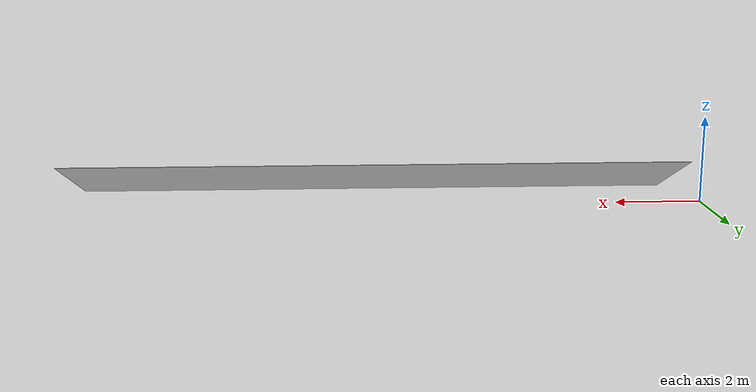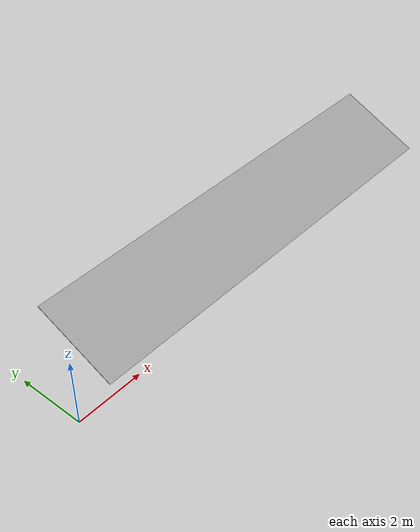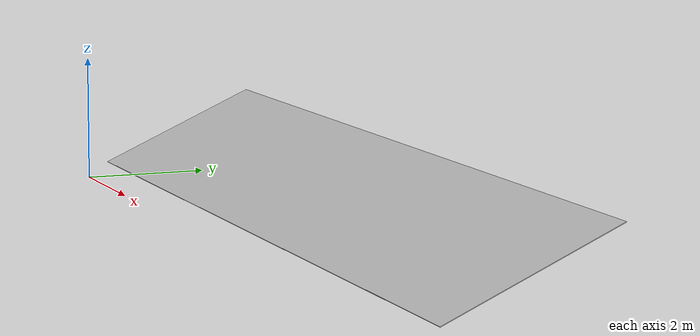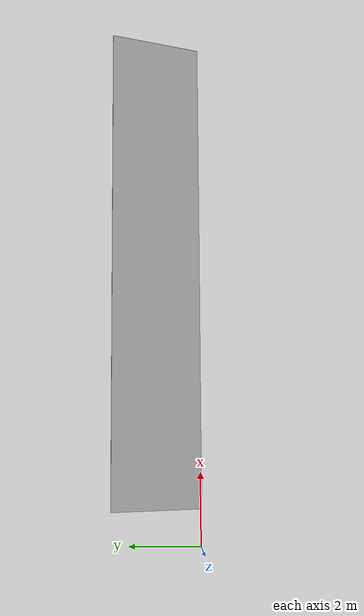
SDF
<?xml version="1.0" ?>
<sdf version="1.6">
  <model name="solar_panels">
    <pose>0 0 0.4 0 0 0</pose>
    <static>true</static>
    <link name="link">
      <collision name='collision'>
        <pose frame=''>7.6 1.25 0 0 -0 0</pose>
        <geometry>
          <box>
            <size>13 2 3</size>
          </box>
        </geometry>
      </collision>
      <visual name="visual">
        <geometry>
          <mesh>
            <uri>model://solar_panels/meshes/model.dae</uri>
          </mesh>
        </geometry>
        <material>
          <script>
            <uri>model://solar_panels/materials/scripts</uri>
            <uri>model://solar_panels/materials/textures</uri>
            <name>solar_panels</name>
          </script>
        </material>
      </visual>
    </link>
  </model>
</sdf>
